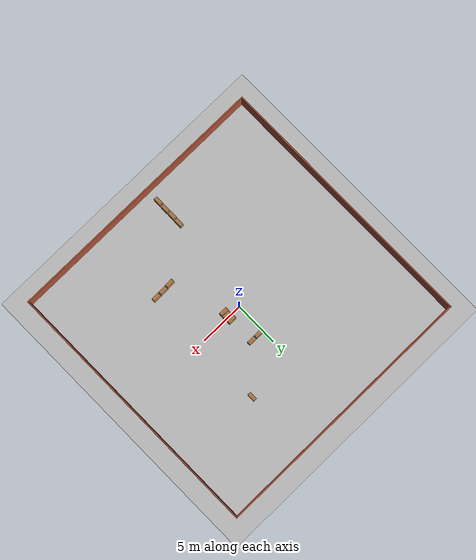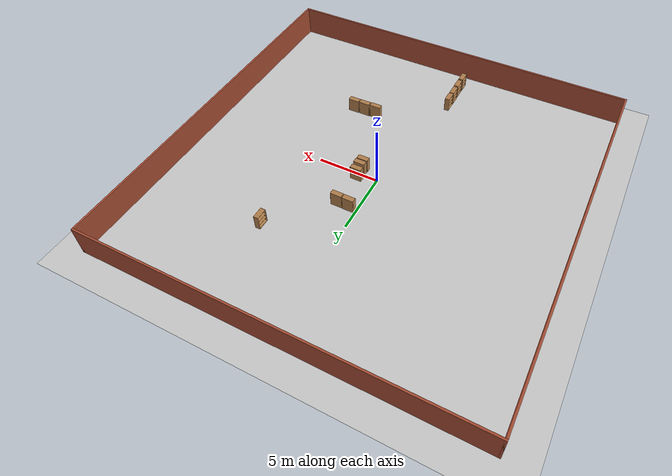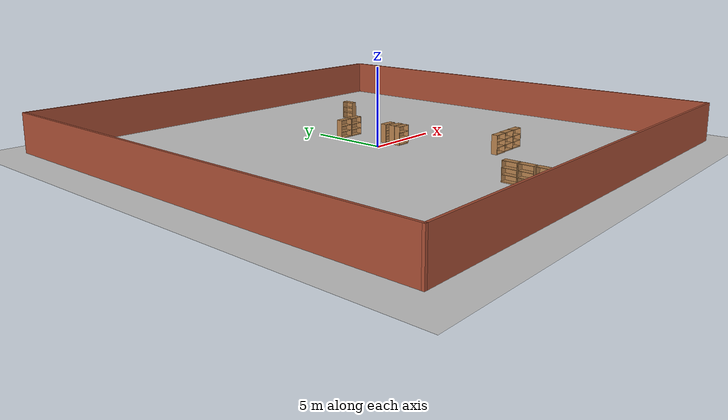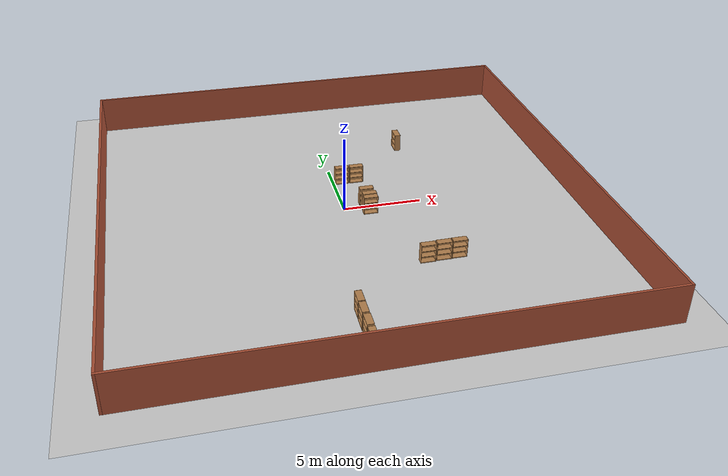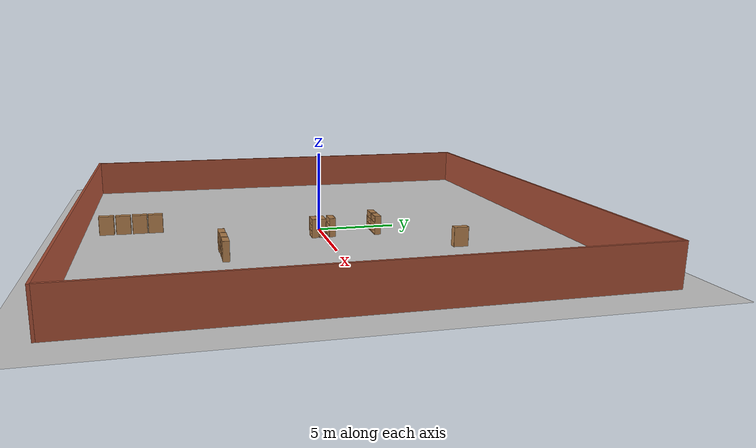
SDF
<sdf version="1.6">
 <world name="default">
  <model name="ground_plane">
   <static>1</static>
   <link name="link">
    <collision name="collision">
     <geometry><plane><normal>0 0 1</normal><size>100 100</size></plane></geometry>
     <surface>
      <contact><collide_bitmask>65535</collide_bitmask></contact>
      <friction><ode><mu>100</mu><mu2>50</mu2></ode></friction>
     </surface>
    </collision>
    <visual name="visual">
     <cast_shadows>0</cast_shadows>
     <geometry><plane><normal>0 0 1</normal><size>100 100</size></plane></geometry>
     <material>
      <script><uri>file://media/materials/scripts/gazebo.material</uri><name>Gazebo/Grey</name></script>
     </material>
    </visual>
   </link>
  </model>
  <model name="30x30_0">
   <link name="Wall_0">
    <collision name="Wall_0_Collision">
     <geometry><box><size>30.15 0.15 2.5</size></box></geometry>
     <pose>0 0 1.25 0 -0 0</pose>
    </collision>
    <visual name="Wall_0_Visual">
     <pose>0 0 1.25 0 -0 0</pose>
     <geometry><box><size>30.15 0.15 2.5</size></box></geometry>
     <material>
      <script><uri>file://media/materials/scripts/gazebo.material</uri><name>Gazebo/Bricks</name></script>
      <ambient>1 1 1 1</ambient>
     </material>
     <meta><layer>0</layer></meta>
    </visual>
    <pose>-15 0 0 0 -0 1.5708</pose>
   </link>
   <link name="Wall_1">
    <collision name="Wall_1_Collision">
     <geometry><box><size>30.15 0.15 2.5</size></box></geometry>
     <pose>0 0 1.25 0 -0 0</pose>
    </collision>
    <visual name="Wall_1_Visual">
     <pose>0 0 1.25 0 -0 0</pose>
     <geometry><box><size>30.15 0.15 2.5</size></box></geometry>
     <material>
      <script><uri>file://media/materials/scripts/gazebo.material</uri><name>Gazebo/Bricks</name></script>
      <ambient>1 1 1 1</ambient>
     </material>
     <meta><layer>0</layer></meta>
    </visual>
    <pose>0 15 0 0 -0 0</pose>
   </link>
   <link name="Wall_2">
    <collision name="Wall_2_Collision">
     <geometry><box><size>30.15 0.15 2.5</size></box></geometry>
     <pose>0 0 1.25 0 -0 0</pose>
    </collision>
    <visual name="Wall_2_Visual">
     <pose>0 0 1.25 0 -0 0</pose>
     <geometry><box><size>30.15 0.15 2.5</size></box></geometry>
     <material>
      <script><uri>file://media/materials/scripts/gazebo.material</uri><name>Gazebo/Bricks</name></script>
      <ambient>1 1 1 1</ambient>
     </material>
     <meta><layer>0</layer></meta>
    </visual>
    <pose>15 0 0 0 -0 -1.5708</pose>
   </link>
   <link name="Wall_3">
    <collision name="Wall_3_Collision">
     <geometry><box><size>30.15 0.15 2.5</size></box></geometry>
     <pose>0 0 1.25 0 -0 0</pose>
    </collision>
    <visual name="Wall_3_Visual">
     <pose>0 0 1.25 0 -0 0</pose>
     <geometry><box><size>30.15 0.15 2.5</size></box></geometry>
     <material>
      <script><uri>file://media/materials/scripts/gazebo.material</uri><name>Gazebo/Bricks</name></script>
      <ambient>1 1 1 1</ambient>
     </material>
     <meta><layer>0</layer></meta>
    </visual>
    <pose>0 -15 0 0 -0 3.14159</pose>
   </link>
   <static>1</static>
  </model>
  <model name="bookshelf_clone_clone_clone_0_clone_0_clone_3">
   <static>1</static>
   <link name="link">
    <inertial><mass>1</mass></inertial>
    <collision name="back">
     <pose>0 0.005 0.6 0 -0 0</pose>
     <geometry><box><size>0.9 0.01 1.2</size></box></geometry>
    </collision>
    <visual name="visual1">
     <pose>0 0.005 0.6 0 -0 0</pose>
     <geometry><box><size>0.9 0.01 1.2</size></box></geometry>
     <material>
      <script><uri>file://media/materials/scripts/gazebo.material</uri><name>Gazebo/Wood</name></script>
     </material>
    </visual>
    <collision name="left_side">
     <pose>0.45 -0.195 0.6 0 -0 0</pose>
     <geometry><box><size>0.02 0.4 1.2</size></box></geometry>
    </collision>
    <visual name="visual2">
     <pose>0.45 -0.195 0.6 0 -0 0</pose>
     <geometry><box><size>0.02 0.4 1.2</size></box></geometry>
     <material>
      <script><uri>file://media/materials/scripts/gazebo.material</uri><name>Gazebo/Wood</name></script>
     </material>
    </visual>
    <collision name="right_side">
     <pose>-0.45 -0.195 0.6 0 -0 0</pose>
     <geometry><box><size>0.02 0.4 1.2</size></box></geometry>
    </collision>
    <visual name="visual3">
     <pose>-0.45 -0.195 0.6 0 -0 0</pose>
     <geometry><box><size>0.02 0.4 1.2</size></box></geometry>
     <material>
      <script><uri>file://media/materials/scripts/gazebo.material</uri><name>Gazebo/Wood</name></script>
     </material>
    </visual>
    <collision name="bottom">
     <pose>0 -0.195 0.03 0 -0 0</pose>
     <geometry><box><size>0.88 0.4 0.06</size></box></geometry>
    </collision>
    <visual name="visual4">
     <pose>0 -0.195 0.03 0 -0 0</pose>
     <geometry><box><size>0.88 0.4 0.06</size></box></geometry>
     <material>
      <script><uri>file://media/materials/scripts/gazebo.material</uri><name>Gazebo/Wood</name></script>
     </material>
    </visual>
    <collision name="top">
     <pose>0 -0.195 1.19 0 -0 0</pose>
     <geometry><box><size>0.88 0.4 0.02</size></box></geometry>
    </collision>
    <visual name="visual5">
     <pose>0 -0.195 1.19 0 -0 0</pose>
     <geometry><box><size>0.88 0.4 0.02</size></box></geometry>
     <material>
      <script><uri>file://media/materials/scripts/gazebo.material</uri><name>Gazebo/Wood</name></script>
     </material>
    </visual>
    <collision name="low_shelf">
     <pose>0 -0.195 0.43 0 -0 0</pose>
     <geometry><box><size>0.88 0.4 0.02</size></box></geometry>
    </collision>
    <visual name="visual6">
     <pose>0 -0.195 0.43 0 -0 0</pose>
     <geometry><box><size>0.88 0.4 0.02</size></box></geometry>
     <material>
      <script><uri>file://media/materials/scripts/gazebo.material</uri><name>Gazebo/Wood</name></script>
     </material>
    </visual>
    <collision name="high_shelf">
     <pose>0 -0.195 0.8 0 -0 0</pose>
     <geometry><box><size>0.88 0.4 0.02</size></box></geometry>
    </collision>
    <visual name="visual7">
     <pose>0 -0.195 0.8 0 -0 0</pose>
     <geometry><box><size>0.88 0.4 0.02</size></box></geometry>
     <material>
      <script><uri>file://media/materials/scripts/gazebo.material</uri><name>Gazebo/Wood</name></script>
     </material>
    </visual>
   </link>
   <pose>0.579279 3.6042 0 0 -0 0</pose>
  </model>
  <model name="bookshelf_clone_clone_clone_0_clone_0_clone_4">
   <static>1</static>
   <link name="link">
    <inertial><mass>1</mass></inertial>
    <collision name="back">
     <pose>0 0.005 0.6 0 -0 0</pose>
     <geometry><box><size>0.9 0.01 1.2</size></box></geometry>
    </collision>
    <visual name="visual1">
     <pose>0 0.005 0.6 0 -0 0</pose>
     <geometry><box><size>0.9 0.01 1.2</size></box></geometry>
     <material>
      <script><uri>file://media/materials/scripts/gazebo.material</uri><name>Gazebo/Wood</name></script>
     </material>
    </visual>
    <collision name="left_side">
     <pose>0.45 -0.195 0.6 0 -0 0</pose>
     <geometry><box><size>0.02 0.4 1.2</size></box></geometry>
    </collision>
    <visual name="visual2">
     <pose>0.45 -0.195 0.6 0 -0 0</pose>
     <geometry><box><size>0.02 0.4 1.2</size></box></geometry>
     <material>
      <script><uri>file://media/materials/scripts/gazebo.material</uri><name>Gazebo/Wood</name></script>
     </material>
    </visual>
    <collision name="right_side">
     <pose>-0.45 -0.195 0.6 0 -0 0</pose>
     <geometry><box><size>0.02 0.4 1.2</size></box></geometry>
    </collision>
    <visual name="visual3">
     <pose>-0.45 -0.195 0.6 0 -0 0</pose>
     <geometry><box><size>0.02 0.4 1.2</size></box></geometry>
     <material>
      <script><uri>file://media/materials/scripts/gazebo.material</uri><name>Gazebo/Wood</name></script>
     </material>
    </visual>
    <collision name="bottom">
     <pose>0 -0.195 0.03 0 -0 0</pose>
     <geometry><box><size>0.88 0.4 0.06</size></box></geometry>
    </collision>
    <visual name="visual4">
     <pose>0 -0.195 0.03 0 -0 0</pose>
     <geometry><box><size>0.88 0.4 0.06</size></box></geometry>
     <material>
      <script><uri>file://media/materials/scripts/gazebo.material</uri><name>Gazebo/Wood</name></script>
     </material>
    </visual>
    <collision name="top">
     <pose>0 -0.195 1.19 0 -0 0</pose>
     <geometry><box><size>0.88 0.4 0.02</size></box></geometry>
    </collision>
    <visual name="visual5">
     <pose>0 -0.195 1.19 0 -0 0</pose>
     <geometry><box><size>0.88 0.4 0.02</size></box></geometry>
     <material>
      <script><uri>file://media/materials/scripts/gazebo.material</uri><name>Gazebo/Wood</name></script>
     </material>
    </visual>
    <collision name="low_shelf">
     <pose>0 -0.195 0.43 0 -0 0</pose>
     <geometry><box><size>0.88 0.4 0.02</size></box></geometry>
    </collision>
    <visual name="visual6">
     <pose>0 -0.195 0.43 0 -0 0</pose>
     <geometry><box><size>0.88 0.4 0.02</size></box></geometry>
     <material>
      <script><uri>file://media/materials/scripts/gazebo.material</uri><name>Gazebo/Wood</name></script>
     </material>
    </visual>
    <collision name="high_shelf">
     <pose>0 -0.195 0.8 0 -0 0</pose>
     <geometry><box><size>0.88 0.4 0.02</size></box></geometry>
    </collision>
    <visual name="visual7">
     <pose>0 -0.195 0.8 0 -0 0</pose>
     <geometry><box><size>0.88 0.4 0.02</size></box></geometry>
     <material>
      <script><uri>file://media/materials/scripts/gazebo.material</uri><name>Gazebo/Wood</name></script>
     </material>
    </visual>
   </link>
   <pose>1.5509 3.59138 0 0 -0 0</pose>
  </model>
  <model name="bookshelf_clone_clone_clone_0_clone_0_clone_5">
   <static>1</static>
   <link name="link">
    <inertial><mass>1</mass></inertial>
    <collision name="back">
     <pose>0 0.005 0.6 0 -0 0</pose>
     <geometry><box><size>0.9 0.01 1.2</size></box></geometry>
    </collision>
    <visual name="visual1">
     <pose>0 0.005 0.6 0 -0 0</pose>
     <geometry><box><size>0.9 0.01 1.2</size></box></geometry>
     <material>
      <script><uri>file://media/materials/scripts/gazebo.material</uri><name>Gazebo/Wood</name></script>
     </material>
    </visual>
    <collision name="left_side">
     <pose>0.45 -0.195 0.6 0 -0 0</pose>
     <geometry><box><size>0.02 0.4 1.2</size></box></geometry>
    </collision>
    <visual name="visual2">
     <pose>0.45 -0.195 0.6 0 -0 0</pose>
     <geometry><box><size>0.02 0.4 1.2</size></box></geometry>
     <material>
      <script><uri>file://media/materials/scripts/gazebo.material</uri><name>Gazebo/Wood</name></script>
     </material>
    </visual>
    <collision name="right_side">
     <pose>-0.45 -0.195 0.6 0 -0 0</pose>
     <geometry><box><size>0.02 0.4 1.2</size></box></geometry>
    </collision>
    <visual name="visual3">
     <pose>-0.45 -0.195 0.6 0 -0 0</pose>
     <geometry><box><size>0.02 0.4 1.2</size></box></geometry>
     <material>
      <script><uri>file://media/materials/scripts/gazebo.material</uri><name>Gazebo/Wood</name></script>
     </material>
    </visual>
    <collision name="bottom">
     <pose>0 -0.195 0.03 0 -0 0</pose>
     <geometry><box><size>0.88 0.4 0.06</size></box></geometry>
    </collision>
    <visual name="visual4">
     <pose>0 -0.195 0.03 0 -0 0</pose>
     <geometry><box><size>0.88 0.4 0.06</size></box></geometry>
     <material>
      <script><uri>file://media/materials/scripts/gazebo.material</uri><name>Gazebo/Wood</name></script>
     </material>
    </visual>
    <collision name="top">
     <pose>0 -0.195 1.19 0 -0 0</pose>
     <geometry><box><size>0.88 0.4 0.02</size></box></geometry>
    </collision>
    <visual name="visual5">
     <pose>0 -0.195 1.19 0 -0 0</pose>
     <geometry><box><size>0.88 0.4 0.02</size></box></geometry>
     <material>
      <script><uri>file://media/materials/scripts/gazebo.material</uri><name>Gazebo/Wood</name></script>
     </material>
    </visual>
    <collision name="low_shelf">
     <pose>0 -0.195 0.43 0 -0 0</pose>
     <geometry><box><size>0.88 0.4 0.02</size></box></geometry>
    </collision>
    <visual name="visual6">
     <pose>0 -0.195 0.43 0 -0 0</pose>
     <geometry><box><size>0.88 0.4 0.02</size></box></geometry>
     <material>
      <script><uri>file://media/materials/scripts/gazebo.material</uri><name>Gazebo/Wood</name></script>
     </material>
    </visual>
    <collision name="high_shelf">
     <pose>0 -0.195 0.8 0 -0 0</pose>
     <geometry><box><size>0.88 0.4 0.02</size></box></geometry>
    </collision>
    <visual name="visual7">
     <pose>0 -0.195 0.8 0 -0 0</pose>
     <geometry><box><size>0.88 0.4 0.02</size></box></geometry>
     <material>
      <script><uri>file://media/materials/scripts/gazebo.material</uri><name>Gazebo/Wood</name></script>
     </material>
    </visual>
   </link>
   <pose>1.52459 0.634835 0 0 -0 0</pose>
  </model>
  <model name="bookshelf_clone_clone_clone_0_clone_0_clone_6">
   <static>1</static>
   <link name="link">
    <inertial><mass>1</mass></inertial>
    <collision name="back">
     <pose>0 0.005 0.6 0 -0 0</pose>
     <geometry><box><size>0.9 0.01 1.2</size></box></geometry>
    </collision>
    <visual name="visual1">
     <pose>0 0.005 0.6 0 -0 0</pose>
     <geometry><box><size>0.9 0.01 1.2</size></box></geometry>
     <material>
      <script><uri>file://media/materials/scripts/gazebo.material</uri><name>Gazebo/Wood</name></script>
     </material>
    </visual>
    <collision name="left_side">
     <pose>0.45 -0.195 0.6 0 -0 0</pose>
     <geometry><box><size>0.02 0.4 1.2</size></box></geometry>
    </collision>
    <visual name="visual2">
     <pose>0.45 -0.195 0.6 0 -0 0</pose>
     <geometry><box><size>0.02 0.4 1.2</size></box></geometry>
     <material>
      <script><uri>file://media/materials/scripts/gazebo.material</uri><name>Gazebo/Wood</name></script>
     </material>
    </visual>
    <collision name="right_side">
     <pose>-0.45 -0.195 0.6 0 -0 0</pose>
     <geometry><box><size>0.02 0.4 1.2</size></box></geometry>
    </collision>
    <visual name="visual3">
     <pose>-0.45 -0.195 0.6 0 -0 0</pose>
     <geometry><box><size>0.02 0.4 1.2</size></box></geometry>
     <material>
      <script><uri>file://media/materials/scripts/gazebo.material</uri><name>Gazebo/Wood</name></script>
     </material>
    </visual>
    <collision name="bottom">
     <pose>0 -0.195 0.03 0 -0 0</pose>
     <geometry><box><size>0.88 0.4 0.06</size></box></geometry>
    </collision>
    <visual name="visual4">
     <pose>0 -0.195 0.03 0 -0 0</pose>
     <geometry><box><size>0.88 0.4 0.06</size></box></geometry>
     <material>
      <script><uri>file://media/materials/scripts/gazebo.material</uri><name>Gazebo/Wood</name></script>
     </material>
    </visual>
    <collision name="top">
     <pose>0 -0.195 1.19 0 -0 0</pose>
     <geometry><box><size>0.88 0.4 0.02</size></box></geometry>
    </collision>
    <visual name="visual5">
     <pose>0 -0.195 1.19 0 -0 0</pose>
     <geometry><box><size>0.88 0.4 0.02</size></box></geometry>
     <material>
      <script><uri>file://media/materials/scripts/gazebo.material</uri><name>Gazebo/Wood</name></script>
     </material>
    </visual>
    <collision name="low_shelf">
     <pose>0 -0.195 0.43 0 -0 0</pose>
     <geometry><box><size>0.88 0.4 0.02</size></box></geometry>
    </collision>
    <visual name="visual6">
     <pose>0 -0.195 0.43 0 -0 0</pose>
     <geometry><box><size>0.88 0.4 0.02</size></box></geometry>
     <material>
      <script><uri>file://media/materials/scripts/gazebo.material</uri><name>Gazebo/Wood</name></script>
     </material>
    </visual>
    <collision name="high_shelf">
     <pose>0 -0.195 0.8 0 -0 0</pose>
     <geometry><box><size>0.88 0.4 0.02</size></box></geometry>
    </collision>
    <visual name="visual7">
     <pose>0 -0.195 0.8 0 -0 0</pose>
     <geometry><box><size>0.88 0.4 0.02</size></box></geometry>
     <material>
      <script><uri>file://media/materials/scripts/gazebo.material</uri><name>Gazebo/Wood</name></script>
     </material>
    </visual>
   </link>
   <pose>1.53646 -0.471671 0 0 -0 0</pose>
  </model>
  <model name="bookshelf_clone_clone_clone_0_clone_0_clone_7">
   <static>1</static>
   <link name="link">
    <inertial><mass>1</mass></inertial>
    <collision name="back">
     <pose>0 0.005 0.6 0 -0 0</pose>
     <geometry><box><size>0.9 0.01 1.2</size></box></geometry>
    </collision>
    <visual name="visual1">
     <pose>0 0.005 0.6 0 -0 0</pose>
     <geometry><box><size>0.9 0.01 1.2</size></box></geometry>
     <material>
      <script><uri>file://media/materials/scripts/gazebo.material</uri><name>Gazebo/Wood</name></script>
     </material>
    </visual>
    <collision name="left_side">
     <pose>0.45 -0.195 0.6 0 -0 0</pose>
     <geometry><box><size>0.02 0.4 1.2</size></box></geometry>
    </collision>
    <visual name="visual2">
     <pose>0.45 -0.195 0.6 0 -0 0</pose>
     <geometry><box><size>0.02 0.4 1.2</size></box></geometry>
     <material>
      <script><uri>file://media/materials/scripts/gazebo.material</uri><name>Gazebo/Wood</name></script>
     </material>
    </visual>
    <collision name="right_side">
     <pose>-0.45 -0.195 0.6 0 -0 0</pose>
     <geometry><box><size>0.02 0.4 1.2</size></box></geometry>
    </collision>
    <visual name="visual3">
     <pose>-0.45 -0.195 0.6 0 -0 0</pose>
     <geometry><box><size>0.02 0.4 1.2</size></box></geometry>
     <material>
      <script><uri>file://media/materials/scripts/gazebo.material</uri><name>Gazebo/Wood</name></script>
     </material>
    </visual>
    <collision name="bottom">
     <pose>0 -0.195 0.03 0 -0 0</pose>
     <geometry><box><size>0.88 0.4 0.06</size></box></geometry>
    </collision>
    <visual name="visual4">
     <pose>0 -0.195 0.03 0 -0 0</pose>
     <geometry><box><size>0.88 0.4 0.06</size></box></geometry>
     <material>
      <script><uri>file://media/materials/scripts/gazebo.material</uri><name>Gazebo/Wood</name></script>
     </material>
    </visual>
    <collision name="top">
     <pose>0 -0.195 1.19 0 -0 0</pose>
     <geometry><box><size>0.88 0.4 0.02</size></box></geometry>
    </collision>
    <visual name="visual5">
     <pose>0 -0.195 1.19 0 -0 0</pose>
     <geometry><box><size>0.88 0.4 0.02</size></box></geometry>
     <material>
      <script><uri>file://media/materials/scripts/gazebo.material</uri><name>Gazebo/Wood</name></script>
     </material>
    </visual>
    <collision name="low_shelf">
     <pose>0 -0.195 0.43 0 -0 0</pose>
     <geometry><box><size>0.88 0.4 0.02</size></box></geometry>
    </collision>
    <visual name="visual6">
     <pose>0 -0.195 0.43 0 -0 0</pose>
     <geometry><box><size>0.88 0.4 0.02</size></box></geometry>
     <material>
      <script><uri>file://media/materials/scripts/gazebo.material</uri><name>Gazebo/Wood</name></script>
     </material>
    </visual>
    <collision name="high_shelf">
     <pose>0 -0.195 0.8 0 -0 0</pose>
     <geometry><box><size>0.88 0.4 0.02</size></box></geometry>
    </collision>
    <visual name="visual7">
     <pose>0 -0.195 0.8 0 -0 0</pose>
     <geometry><box><size>0.88 0.4 0.02</size></box></geometry>
     <material>
      <script><uri>file://media/materials/scripts/gazebo.material</uri><name>Gazebo/Wood</name></script>
     </material>
    </visual>
   </link>
   <pose>1.56721 -0.006679 0 0 -0 0</pose>
  </model>
  <model name="bookshelf_clone_clone_clone_0_clone_0_clone_6_clone_0">
   <static>1</static>
   <link name="link">
    <inertial><mass>1</mass></inertial>
    <collision name="back">
     <pose>0 0.005 0.6 0 -0 0</pose>
     <geometry><box><size>0.9 0.01 1.2</size></box></geometry>
    </collision>
    <visual name="visual1">
     <pose>0 0.005 0.6 0 -0 0</pose>
     <geometry><box><size>0.9 0.01 1.2</size></box></geometry>
     <material>
      <script><uri>file://media/materials/scripts/gazebo.material</uri><name>Gazebo/Wood</name></script>
     </material>
    </visual>
    <collision name="left_side">
     <pose>0.45 -0.195 0.6 0 -0 0</pose>
     <geometry><box><size>0.02 0.4 1.2</size></box></geometry>
    </collision>
    <visual name="visual2">
     <pose>0.45 -0.195 0.6 0 -0 0</pose>
     <geometry><box><size>0.02 0.4 1.2</size></box></geometry>
     <material>
      <script><uri>file://media/materials/scripts/gazebo.material</uri><name>Gazebo/Wood</name></script>
     </material>
    </visual>
    <collision name="right_side">
     <pose>-0.45 -0.195 0.6 0 -0 0</pose>
     <geometry><box><size>0.02 0.4 1.2</size></box></geometry>
    </collision>
    <visual name="visual3">
     <pose>-0.45 -0.195 0.6 0 -0 0</pose>
     <geometry><box><size>0.02 0.4 1.2</size></box></geometry>
     <material>
      <script><uri>file://media/materials/scripts/gazebo.material</uri><name>Gazebo/Wood</name></script>
     </material>
    </visual>
    <collision name="bottom">
     <pose>0 -0.195 0.03 0 -0 0</pose>
     <geometry><box><size>0.88 0.4 0.06</size></box></geometry>
    </collision>
    <visual name="visual4">
     <pose>0 -0.195 0.03 0 -0 0</pose>
     <geometry><box><size>0.88 0.4 0.06</size></box></geometry>
     <material>
      <script><uri>file://media/materials/scripts/gazebo.material</uri><name>Gazebo/Wood</name></script>
     </material>
    </visual>
    <collision name="top">
     <pose>0 -0.195 1.19 0 -0 0</pose>
     <geometry><box><size>0.88 0.4 0.02</size></box></geometry>
    </collision>
    <visual name="visual5">
     <pose>0 -0.195 1.19 0 -0 0</pose>
     <geometry><box><size>0.88 0.4 0.02</size></box></geometry>
     <material>
      <script><uri>file://media/materials/scripts/gazebo.material</uri><name>Gazebo/Wood</name></script>
     </material>
    </visual>
    <collision name="low_shelf">
     <pose>0 -0.195 0.43 0 -0 0</pose>
     <geometry><box><size>0.88 0.4 0.02</size></box></geometry>
    </collision>
    <visual name="visual6">
     <pose>0 -0.195 0.43 0 -0 0</pose>
     <geometry><box><size>0.88 0.4 0.02</size></box></geometry>
     <material>
      <script><uri>file://media/materials/scripts/gazebo.material</uri><name>Gazebo/Wood</name></script>
     </material>
    </visual>
    <collision name="high_shelf">
     <pose>0 -0.195 0.8 0 -0 0</pose>
     <geometry><box><size>0.88 0.4 0.02</size></box></geometry>
    </collision>
    <visual name="visual7">
     <pose>0 -0.195 0.8 0 -0 0</pose>
     <geometry><box><size>0.88 0.4 0.02</size></box></geometry>
     <material>
      <script><uri>file://media/materials/scripts/gazebo.material</uri><name>Gazebo/Wood</name></script>
     </material>
    </visual>
   </link>
   <pose>5.40986 -6.33095 0 0 -0 0</pose>
  </model>
  <model name="bookshelf_clone_clone_clone_0_clone_0_clone_6_clone_1">
   <static>1</static>
   <link name="link">
    <inertial><mass>1</mass></inertial>
    <collision name="back">
     <pose>0 0.005 0.6 0 -0 0</pose>
     <geometry><box><size>0.9 0.01 1.2</size></box></geometry>
    </collision>
    <visual name="visual1">
     <pose>0 0.005 0.6 0 -0 0</pose>
     <geometry><box><size>0.9 0.01 1.2</size></box></geometry>
     <material>
      <script><uri>file://media/materials/scripts/gazebo.material</uri><name>Gazebo/Wood</name></script>
     </material>
    </visual>
    <collision name="left_side">
     <pose>0.45 -0.195 0.6 0 -0 0</pose>
     <geometry><box><size>0.02 0.4 1.2</size></box></geometry>
    </collision>
    <visual name="visual2">
     <pose>0.45 -0.195 0.6 0 -0 0</pose>
     <geometry><box><size>0.02 0.4 1.2</size></box></geometry>
     <material>
      <script><uri>file://media/materials/scripts/gazebo.material</uri><name>Gazebo/Wood</name></script>
     </material>
    </visual>
    <collision name="right_side">
     <pose>-0.45 -0.195 0.6 0 -0 0</pose>
     <geometry><box><size>0.02 0.4 1.2</size></box></geometry>
    </collision>
    <visual name="visual3">
     <pose>-0.45 -0.195 0.6 0 -0 0</pose>
     <geometry><box><size>0.02 0.4 1.2</size></box></geometry>
     <material>
      <script><uri>file://media/materials/scripts/gazebo.material</uri><name>Gazebo/Wood</name></script>
     </material>
    </visual>
    <collision name="bottom">
     <pose>0 -0.195 0.03 0 -0 0</pose>
     <geometry><box><size>0.88 0.4 0.06</size></box></geometry>
    </collision>
    <visual name="visual4">
     <pose>0 -0.195 0.03 0 -0 0</pose>
     <geometry><box><size>0.88 0.4 0.06</size></box></geometry>
     <material>
      <script><uri>file://media/materials/scripts/gazebo.material</uri><name>Gazebo/Wood</name></script>
     </material>
    </visual>
    <collision name="top">
     <pose>0 -0.195 1.19 0 -0 0</pose>
     <geometry><box><size>0.88 0.4 0.02</size></box></geometry>
    </collision>
    <visual name="visual5">
     <pose>0 -0.195 1.19 0 -0 0</pose>
     <geometry><box><size>0.88 0.4 0.02</size></box></geometry>
     <material>
      <script><uri>file://media/materials/scripts/gazebo.material</uri><name>Gazebo/Wood</name></script>
     </material>
    </visual>
    <collision name="low_shelf">
     <pose>0 -0.195 0.43 0 -0 0</pose>
     <geometry><box><size>0.88 0.4 0.02</size></box></geometry>
    </collision>
    <visual name="visual6">
     <pose>0 -0.195 0.43 0 -0 0</pose>
     <geometry><box><size>0.88 0.4 0.02</size></box></geometry>
     <material>
      <script><uri>file://media/materials/scripts/gazebo.material</uri><name>Gazebo/Wood</name></script>
     </material>
    </visual>
    <collision name="high_shelf">
     <pose>0 -0.195 0.8 0 -0 0</pose>
     <geometry><box><size>0.88 0.4 0.02</size></box></geometry>
    </collision>
    <visual name="visual7">
     <pose>0 -0.195 0.8 0 -0 0</pose>
     <geometry><box><size>0.88 0.4 0.02</size></box></geometry>
     <material>
      <script><uri>file://media/materials/scripts/gazebo.material</uri><name>Gazebo/Wood</name></script>
     </material>
    </visual>
   </link>
   <pose>4.44654 -6.35263 0 0 -0 0</pose>
  </model>
  <model name="bookshelf_clone_clone_clone_0_clone_0_clone_6_clone_2">
   <static>1</static>
   <link name="link">
    <inertial><mass>1</mass></inertial>
    <collision name="back">
     <pose>0 0.005 0.6 0 -0 0</pose>
     <geometry><box><size>0.9 0.01 1.2</size></box></geometry>
    </collision>
    <visual name="visual1">
     <pose>0 0.005 0.6 0 -0 0</pose>
     <geometry><box><size>0.9 0.01 1.2</size></box></geometry>
     <material>
      <script><uri>file://media/materials/scripts/gazebo.material</uri><name>Gazebo/Wood</name></script>
     </material>
    </visual>
    <collision name="left_side">
     <pose>0.45 -0.195 0.6 0 -0 0</pose>
     <geometry><box><size>0.02 0.4 1.2</size></box></geometry>
    </collision>
    <visual name="visual2">
     <pose>0.45 -0.195 0.6 0 -0 0</pose>
     <geometry><box><size>0.02 0.4 1.2</size></box></geometry>
     <material>
      <script><uri>file://media/materials/scripts/gazebo.material</uri><name>Gazebo/Wood</name></script>
     </material>
    </visual>
    <collision name="right_side">
     <pose>-0.45 -0.195 0.6 0 -0 0</pose>
     <geometry><box><size>0.02 0.4 1.2</size></box></geometry>
    </collision>
    <visual name="visual3">
     <pose>-0.45 -0.195 0.6 0 -0 0</pose>
     <geometry><box><size>0.02 0.4 1.2</size></box></geometry>
     <material>
      <script><uri>file://media/materials/scripts/gazebo.material</uri><name>Gazebo/Wood</name></script>
     </material>
    </visual>
    <collision name="bottom">
     <pose>0 -0.195 0.03 0 -0 0</pose>
     <geometry><box><size>0.88 0.4 0.06</size></box></geometry>
    </collision>
    <visual name="visual4">
     <pose>0 -0.195 0.03 0 -0 0</pose>
     <geometry><box><size>0.88 0.4 0.06</size></box></geometry>
     <material>
      <script><uri>file://media/materials/scripts/gazebo.material</uri><name>Gazebo/Wood</name></script>
     </material>
    </visual>
    <collision name="top">
     <pose>0 -0.195 1.19 0 -0 0</pose>
     <geometry><box><size>0.88 0.4 0.02</size></box></geometry>
    </collision>
    <visual name="visual5">
     <pose>0 -0.195 1.19 0 -0 0</pose>
     <geometry><box><size>0.88 0.4 0.02</size></box></geometry>
     <material>
      <script><uri>file://media/materials/scripts/gazebo.material</uri><name>Gazebo/Wood</name></script>
     </material>
    </visual>
    <collision name="low_shelf">
     <pose>0 -0.195 0.43 0 -0 0</pose>
     <geometry><box><size>0.88 0.4 0.02</size></box></geometry>
    </collision>
    <visual name="visual6">
     <pose>0 -0.195 0.43 0 -0 0</pose>
     <geometry><box><size>0.88 0.4 0.02</size></box></geometry>
     <material>
      <script><uri>file://media/materials/scripts/gazebo.material</uri><name>Gazebo/Wood</name></script>
     </material>
    </visual>
    <collision name="high_shelf">
     <pose>0 -0.195 0.8 0 -0 0</pose>
     <geometry><box><size>0.88 0.4 0.02</size></box></geometry>
    </collision>
    <visual name="visual7">
     <pose>0 -0.195 0.8 0 -0 0</pose>
     <geometry><box><size>0.88 0.4 0.02</size></box></geometry>
     <material>
      <script><uri>file://media/materials/scripts/gazebo.material</uri><name>Gazebo/Wood</name></script>
     </material>
    </visual>
   </link>
   <pose>3.46602 -6.39937 0 0 -0 0</pose>
  </model>
  <model name="bookshelf_clone_0_clone_clone_3_clone_clone_3">
   <static>1</static>
   <link name="link">
    <inertial><mass>1</mass></inertial>
    <collision name="back">
     <pose>0 0.005 0.6 0 -0 0</pose>
     <geometry><box><size>0.9 0.01 1.2</size></box></geometry>
    </collision>
    <visual name="visual1">
     <pose>0 0.005 0.6 0 -0 0</pose>
     <geometry><box><size>0.9 0.01 1.2</size></box></geometry>
     <material>
      <script><uri>file://media/materials/scripts/gazebo.material</uri><name>Gazebo/Wood</name></script>
     </material>
    </visual>
    <collision name="left_side">
     <pose>0.45 -0.195 0.6 0 -0 0</pose>
     <geometry><box><size>0.02 0.4 1.2</size></box></geometry>
    </collision>
    <visual name="visual2">
     <pose>0.45 -0.195 0.6 0 -0 0</pose>
     <geometry><box><size>0.02 0.4 1.2</size></box></geometry>
     <material>
      <script><uri>file://media/materials/scripts/gazebo.material</uri><name>Gazebo/Wood</name></script>
     </material>
    </visual>
    <collision name="right_side">
     <pose>-0.45 -0.195 0.6 0 -0 0</pose>
     <geometry><box><size>0.02 0.4 1.2</size></box></geometry>
    </collision>
    <visual name="visual3">
     <pose>-0.45 -0.195 0.6 0 -0 0</pose>
     <geometry><box><size>0.02 0.4 1.2</size></box></geometry>
     <material>
      <script><uri>file://media/materials/scripts/gazebo.material</uri><name>Gazebo/Wood</name></script>
     </material>
    </visual>
    <collision name="bottom">
     <pose>0 -0.195 0.03 0 -0 0</pose>
     <geometry><box><size>0.88 0.4 0.06</size></box></geometry>
    </collision>
    <visual name="visual4">
     <pose>0 -0.195 0.03 0 -0 0</pose>
     <geometry><box><size>0.88 0.4 0.06</size></box></geometry>
     <material>
      <script><uri>file://media/materials/scripts/gazebo.material</uri><name>Gazebo/Wood</name></script>
     </material>
    </visual>
    <collision name="top">
     <pose>0 -0.195 1.19 0 -0 0</pose>
     <geometry><box><size>0.88 0.4 0.02</size></box></geometry>
    </collision>
    <visual name="visual5">
     <pose>0 -0.195 1.19 0 -0 0</pose>
     <geometry><box><size>0.88 0.4 0.02</size></box></geometry>
     <material>
      <script><uri>file://media/materials/scripts/gazebo.material</uri><name>Gazebo/Wood</name></script>
     </material>
    </visual>
    <collision name="low_shelf">
     <pose>0 -0.195 0.43 0 -0 0</pose>
     <geometry><box><size>0.88 0.4 0.02</size></box></geometry>
    </collision>
    <visual name="visual6">
     <pose>0 -0.195 0.43 0 -0 0</pose>
     <geometry><box><size>0.88 0.4 0.02</size></box></geometry>
     <material>
      <script><uri>file://media/materials/scripts/gazebo.material</uri><name>Gazebo/Wood</name></script>
     </material>
    </visual>
    <collision name="high_shelf">
     <pose>0 -0.195 0.8 0 -0 0</pose>
     <geometry><box><size>0.88 0.4 0.02</size></box></geometry>
    </collision>
    <visual name="visual7">
     <pose>0 -0.195 0.8 0 -0 0</pose>
     <geometry><box><size>0.88 0.4 0.02</size></box></geometry>
     <material>
      <script><uri>file://media/materials/scripts/gazebo.material</uri><name>Gazebo/Wood</name></script>
     </material>
    </visual>
   </link>
   <pose>-1.40431 -13.4992 0 0 0 -1.58271</pose>
  </model>
  <model name="bookshelf_clone_0_clone_clone_3_clone_clone_4">
   <static>1</static>
   <link name="link">
    <inertial><mass>1</mass></inertial>
    <collision name="back">
     <pose>0 0.005 0.6 0 -0 0</pose>
     <geometry><box><size>0.9 0.01 1.2</size></box></geometry>
    </collision>
    <visual name="visual1">
     <pose>0 0.005 0.6 0 -0 0</pose>
     <geometry><box><size>0.9 0.01 1.2</size></box></geometry>
     <material>
      <script><uri>file://media/materials/scripts/gazebo.material</uri><name>Gazebo/Wood</name></script>
     </material>
    </visual>
    <collision name="left_side">
     <pose>0.45 -0.195 0.6 0 -0 0</pose>
     <geometry><box><size>0.02 0.4 1.2</size></box></geometry>
    </collision>
    <visual name="visual2">
     <pose>0.45 -0.195 0.6 0 -0 0</pose>
     <geometry><box><size>0.02 0.4 1.2</size></box></geometry>
     <material>
      <script><uri>file://media/materials/scripts/gazebo.material</uri><name>Gazebo/Wood</name></script>
     </material>
    </visual>
    <collision name="right_side">
     <pose>-0.45 -0.195 0.6 0 -0 0</pose>
     <geometry><box><size>0.02 0.4 1.2</size></box></geometry>
    </collision>
    <visual name="visual3">
     <pose>-0.45 -0.195 0.6 0 -0 0</pose>
     <geometry><box><size>0.02 0.4 1.2</size></box></geometry>
     <material>
      <script><uri>file://media/materials/scripts/gazebo.material</uri><name>Gazebo/Wood</name></script>
     </material>
    </visual>
    <collision name="bottom">
     <pose>0 -0.195 0.03 0 -0 0</pose>
     <geometry><box><size>0.88 0.4 0.06</size></box></geometry>
    </collision>
    <visual name="visual4">
     <pose>0 -0.195 0.03 0 -0 0</pose>
     <geometry><box><size>0.88 0.4 0.06</size></box></geometry>
     <material>
      <script><uri>file://media/materials/scripts/gazebo.material</uri><name>Gazebo/Wood</name></script>
     </material>
    </visual>
    <collision name="top">
     <pose>0 -0.195 1.19 0 -0 0</pose>
     <geometry><box><size>0.88 0.4 0.02</size></box></geometry>
    </collision>
    <visual name="visual5">
     <pose>0 -0.195 1.19 0 -0 0</pose>
     <geometry><box><size>0.88 0.4 0.02</size></box></geometry>
     <material>
      <script><uri>file://media/materials/scripts/gazebo.material</uri><name>Gazebo/Wood</name></script>
     </material>
    </visual>
    <collision name="low_shelf">
     <pose>0 -0.195 0.43 0 -0 0</pose>
     <geometry><box><size>0.88 0.4 0.02</size></box></geometry>
    </collision>
    <visual name="visual6">
     <pose>0 -0.195 0.43 0 -0 0</pose>
     <geometry><box><size>0.88 0.4 0.02</size></box></geometry>
     <material>
      <script><uri>file://media/materials/scripts/gazebo.material</uri><name>Gazebo/Wood</name></script>
     </material>
    </visual>
    <collision name="high_shelf">
     <pose>0 -0.195 0.8 0 -0 0</pose>
     <geometry><box><size>0.88 0.4 0.02</size></box></geometry>
    </collision>
    <visual name="visual7">
     <pose>0 -0.195 0.8 0 -0 0</pose>
     <geometry><box><size>0.88 0.4 0.02</size></box></geometry>
     <material>
      <script><uri>file://media/materials/scripts/gazebo.material</uri><name>Gazebo/Wood</name></script>
     </material>
    </visual>
   </link>
   <pose>-1.38514 -12.4581 0 0 0 -1.58271</pose>
  </model>
  <model name="bookshelf_clone_0_clone_clone_3_clone_clone_5">
   <static>1</static>
   <link name="link">
    <inertial><mass>1</mass></inertial>
    <collision name="back">
     <pose>0 0.005 0.6 0 -0 0</pose>
     <geometry><box><size>0.9 0.01 1.2</size></box></geometry>
    </collision>
    <visual name="visual1">
     <pose>0 0.005 0.6 0 -0 0</pose>
     <geometry><box><size>0.9 0.01 1.2</size></box></geometry>
     <material>
      <script><uri>file://media/materials/scripts/gazebo.material</uri><name>Gazebo/Wood</name></script>
     </material>
    </visual>
    <collision name="left_side">
     <pose>0.45 -0.195 0.6 0 -0 0</pose>
     <geometry><box><size>0.02 0.4 1.2</size></box></geometry>
    </collision>
    <visual name="visual2">
     <pose>0.45 -0.195 0.6 0 -0 0</pose>
     <geometry><box><size>0.02 0.4 1.2</size></box></geometry>
     <material>
      <script><uri>file://media/materials/scripts/gazebo.material</uri><name>Gazebo/Wood</name></script>
     </material>
    </visual>
    <collision name="right_side">
     <pose>-0.45 -0.195 0.6 0 -0 0</pose>
     <geometry><box><size>0.02 0.4 1.2</size></box></geometry>
    </collision>
    <visual name="visual3">
     <pose>-0.45 -0.195 0.6 0 -0 0</pose>
     <geometry><box><size>0.02 0.4 1.2</size></box></geometry>
     <material>
      <script><uri>file://media/materials/scripts/gazebo.material</uri><name>Gazebo/Wood</name></script>
     </material>
    </visual>
    <collision name="bottom">
     <pose>0 -0.195 0.03 0 -0 0</pose>
     <geometry><box><size>0.88 0.4 0.06</size></box></geometry>
    </collision>
    <visual name="visual4">
     <pose>0 -0.195 0.03 0 -0 0</pose>
     <geometry><box><size>0.88 0.4 0.06</size></box></geometry>
     <material>
      <script><uri>file://media/materials/scripts/gazebo.material</uri><name>Gazebo/Wood</name></script>
     </material>
    </visual>
    <collision name="top">
     <pose>0 -0.195 1.19 0 -0 0</pose>
     <geometry><box><size>0.88 0.4 0.02</size></box></geometry>
    </collision>
    <visual name="visual5">
     <pose>0 -0.195 1.19 0 -0 0</pose>
     <geometry><box><size>0.88 0.4 0.02</size></box></geometry>
     <material>
      <script><uri>file://media/materials/scripts/gazebo.material</uri><name>Gazebo/Wood</name></script>
     </material>
    </visual>
    <collision name="low_shelf">
     <pose>0 -0.195 0.43 0 -0 0</pose>
     <geometry><box><size>0.88 0.4 0.02</size></box></geometry>
    </collision>
    <visual name="visual6">
     <pose>0 -0.195 0.43 0 -0 0</pose>
     <geometry><box><size>0.88 0.4 0.02</size></box></geometry>
     <material>
      <script><uri>file://media/materials/scripts/gazebo.material</uri><name>Gazebo/Wood</name></script>
     </material>
    </visual>
    <collision name="high_shelf">
     <pose>0 -0.195 0.8 0 -0 0</pose>
     <geometry><box><size>0.88 0.4 0.02</size></box></geometry>
    </collision>
    <visual name="visual7">
     <pose>0 -0.195 0.8 0 -0 0</pose>
     <geometry><box><size>0.88 0.4 0.02</size></box></geometry>
     <material>
      <script><uri>file://media/materials/scripts/gazebo.material</uri><name>Gazebo/Wood</name></script>
     </material>
    </visual>
   </link>
   <pose>-1.38761 -11.4377 0 0 0 -1.58271</pose>
  </model>
  <model name="bookshelf_clone_0_clone_clone_3_clone_clone_6">
   <static>1</static>
   <link name="link">
    <inertial><mass>1</mass></inertial>
    <collision name="back">
     <pose>0 0.005 0.6 0 -0 0</pose>
     <geometry><box><size>0.9 0.01 1.2</size></box></geometry>
    </collision>
    <visual name="visual1">
     <pose>0 0.005 0.6 0 -0 0</pose>
     <geometry><box><size>0.9 0.01 1.2</size></box></geometry>
     <material>
      <script><uri>file://media/materials/scripts/gazebo.material</uri><name>Gazebo/Wood</name></script>
     </material>
    </visual>
    <collision name="left_side">
     <pose>0.45 -0.195 0.6 0 -0 0</pose>
     <geometry><box><size>0.02 0.4 1.2</size></box></geometry>
    </collision>
    <visual name="visual2">
     <pose>0.45 -0.195 0.6 0 -0 0</pose>
     <geometry><box><size>0.02 0.4 1.2</size></box></geometry>
     <material>
      <script><uri>file://media/materials/scripts/gazebo.material</uri><name>Gazebo/Wood</name></script>
     </material>
    </visual>
    <collision name="right_side">
     <pose>-0.45 -0.195 0.6 0 -0 0</pose>
     <geometry><box><size>0.02 0.4 1.2</size></box></geometry>
    </collision>
    <visual name="visual3">
     <pose>-0.45 -0.195 0.6 0 -0 0</pose>
     <geometry><box><size>0.02 0.4 1.2</size></box></geometry>
     <material>
      <script><uri>file://media/materials/scripts/gazebo.material</uri><name>Gazebo/Wood</name></script>
     </material>
    </visual>
    <collision name="bottom">
     <pose>0 -0.195 0.03 0 -0 0</pose>
     <geometry><box><size>0.88 0.4 0.06</size></box></geometry>
    </collision>
    <visual name="visual4">
     <pose>0 -0.195 0.03 0 -0 0</pose>
     <geometry><box><size>0.88 0.4 0.06</size></box></geometry>
     <material>
      <script><uri>file://media/materials/scripts/gazebo.material</uri><name>Gazebo/Wood</name></script>
     </material>
    </visual>
    <collision name="top">
     <pose>0 -0.195 1.19 0 -0 0</pose>
     <geometry><box><size>0.88 0.4 0.02</size></box></geometry>
    </collision>
    <visual name="visual5">
     <pose>0 -0.195 1.19 0 -0 0</pose>
     <geometry><box><size>0.88 0.4 0.02</size></box></geometry>
     <material>
      <script><uri>file://media/materials/scripts/gazebo.material</uri><name>Gazebo/Wood</name></script>
     </material>
    </visual>
    <collision name="low_shelf">
     <pose>0 -0.195 0.43 0 -0 0</pose>
     <geometry><box><size>0.88 0.4 0.02</size></box></geometry>
    </collision>
    <visual name="visual6">
     <pose>0 -0.195 0.43 0 -0 0</pose>
     <geometry><box><size>0.88 0.4 0.02</size></box></geometry>
     <material>
      <script><uri>file://media/materials/scripts/gazebo.material</uri><name>Gazebo/Wood</name></script>
     </material>
    </visual>
    <collision name="high_shelf">
     <pose>0 -0.195 0.8 0 -0 0</pose>
     <geometry><box><size>0.88 0.4 0.02</size></box></geometry>
    </collision>
    <visual name="visual7">
     <pose>0 -0.195 0.8 0 -0 0</pose>
     <geometry><box><size>0.88 0.4 0.02</size></box></geometry>
     <material>
      <script><uri>file://media/materials/scripts/gazebo.material</uri><name>Gazebo/Wood</name></script>
     </material>
    </visual>
   </link>
   <pose>-1.36962 -10.4601 0 0 0 -1.58271</pose>
  </model>
  <model name="bookshelf_clone_0_clone_clone_2_clone_2_clone_3_clone_0">
   <static>1</static>
   <link name="link">
    <inertial><mass>1</mass></inertial>
    <collision name="back">
     <pose>0 0.005 0.6 0 -0 0</pose>
     <geometry><box><size>0.9 0.01 1.2</size></box></geometry>
    </collision>
    <visual name="visual1">
     <pose>0 0.005 0.6 0 -0 0</pose>
     <geometry><box><size>0.9 0.01 1.2</size></box></geometry>
     <material>
      <script><uri>file://media/materials/scripts/gazebo.material</uri><name>Gazebo/Wood</name></script>
     </material>
    </visual>
    <collision name="left_side">
     <pose>0.45 -0.195 0.6 0 -0 0</pose>
     <geometry><box><size>0.02 0.4 1.2</size></box></geometry>
    </collision>
    <visual name="visual2">
     <pose>0.45 -0.195 0.6 0 -0 0</pose>
     <geometry><box><size>0.02 0.4 1.2</size></box></geometry>
     <material>
      <script><uri>file://media/materials/scripts/gazebo.material</uri><name>Gazebo/Wood</name></script>
     </material>
    </visual>
    <collision name="right_side">
     <pose>-0.45 -0.195 0.6 0 -0 0</pose>
     <geometry><box><size>0.02 0.4 1.2</size></box></geometry>
    </collision>
    <visual name="visual3">
     <pose>-0.45 -0.195 0.6 0 -0 0</pose>
     <geometry><box><size>0.02 0.4 1.2</size></box></geometry>
     <material>
      <script><uri>file://media/materials/scripts/gazebo.material</uri><name>Gazebo/Wood</name></script>
     </material>
    </visual>
    <collision name="bottom">
     <pose>0 -0.195 0.03 0 -0 0</pose>
     <geometry><box><size>0.88 0.4 0.06</size></box></geometry>
    </collision>
    <visual name="visual4">
     <pose>0 -0.195 0.03 0 -0 0</pose>
     <geometry><box><size>0.88 0.4 0.06</size></box></geometry>
     <material>
      <script><uri>file://media/materials/scripts/gazebo.material</uri><name>Gazebo/Wood</name></script>
     </material>
    </visual>
    <collision name="top">
     <pose>0 -0.195 1.19 0 -0 0</pose>
     <geometry><box><size>0.88 0.4 0.02</size></box></geometry>
    </collision>
    <visual name="visual5">
     <pose>0 -0.195 1.19 0 -0 0</pose>
     <geometry><box><size>0.88 0.4 0.02</size></box></geometry>
     <material>
      <script><uri>file://media/materials/scripts/gazebo.material</uri><name>Gazebo/Wood</name></script>
     </material>
    </visual>
    <collision name="low_shelf">
     <pose>0 -0.195 0.43 0 -0 0</pose>
     <geometry><box><size>0.88 0.4 0.02</size></box></geometry>
    </collision>
    <visual name="visual6">
     <pose>0 -0.195 0.43 0 -0 0</pose>
     <geometry><box><size>0.88 0.4 0.02</size></box></geometry>
     <material>
      <script><uri>file://media/materials/scripts/gazebo.material</uri><name>Gazebo/Wood</name></script>
     </material>
    </visual>
    <collision name="high_shelf">
     <pose>0 -0.195 0.8 0 -0 0</pose>
     <geometry><box><size>0.88 0.4 0.02</size></box></geometry>
    </collision>
    <visual name="visual7">
     <pose>0 -0.195 0.8 0 -0 0</pose>
     <geometry><box><size>0.88 0.4 0.02</size></box></geometry>
     <material>
      <script><uri>file://media/materials/scripts/gazebo.material</uri><name>Gazebo/Wood</name></script>
     </material>
    </visual>
   </link>
   <pose>5.70007 7.47948 0 0 0 -1.58271</pose>
  </model>
 </world>
</sdf>
